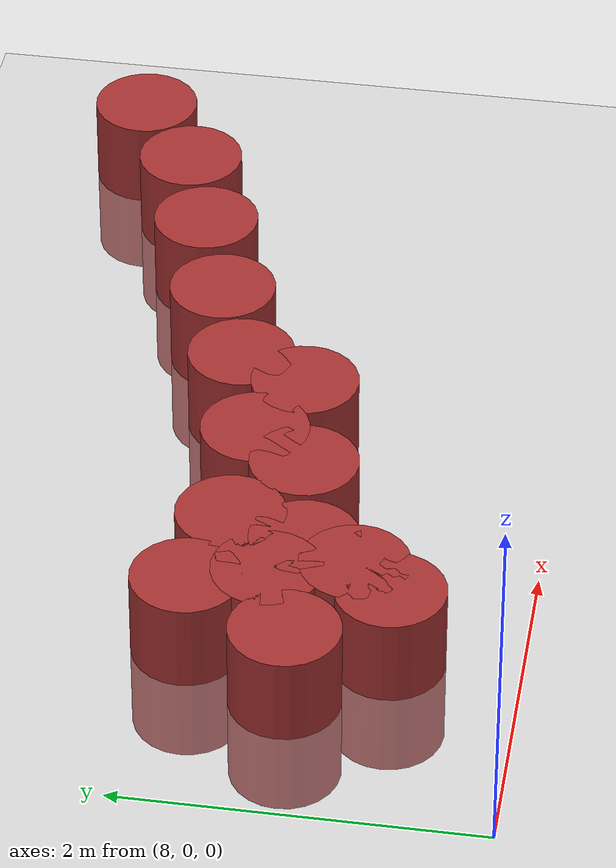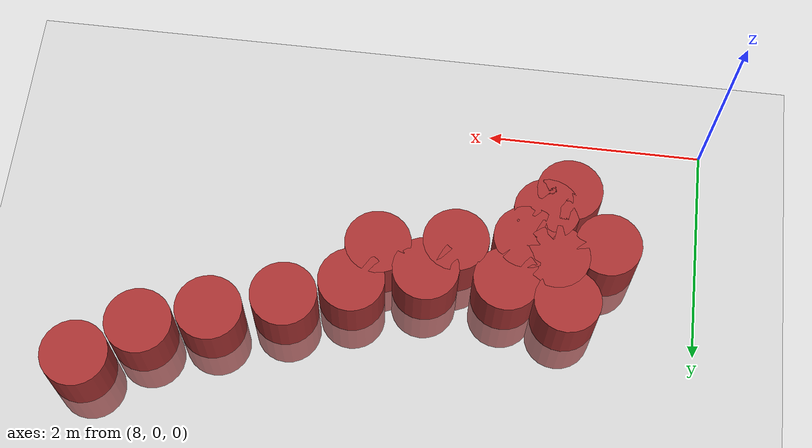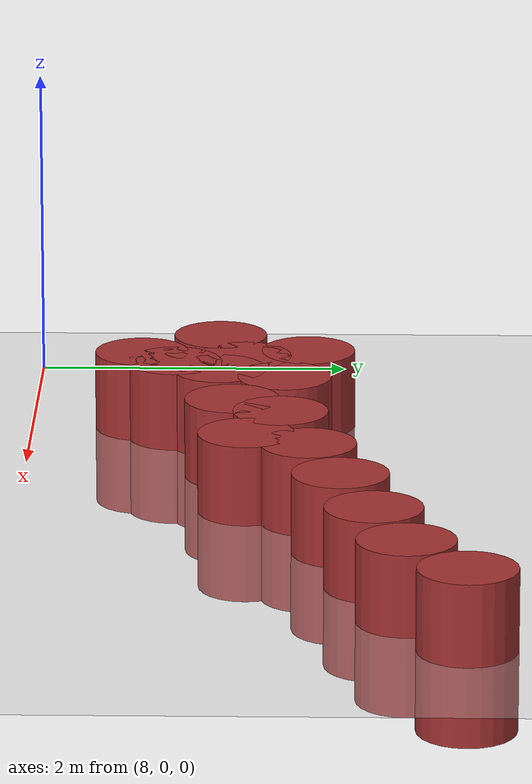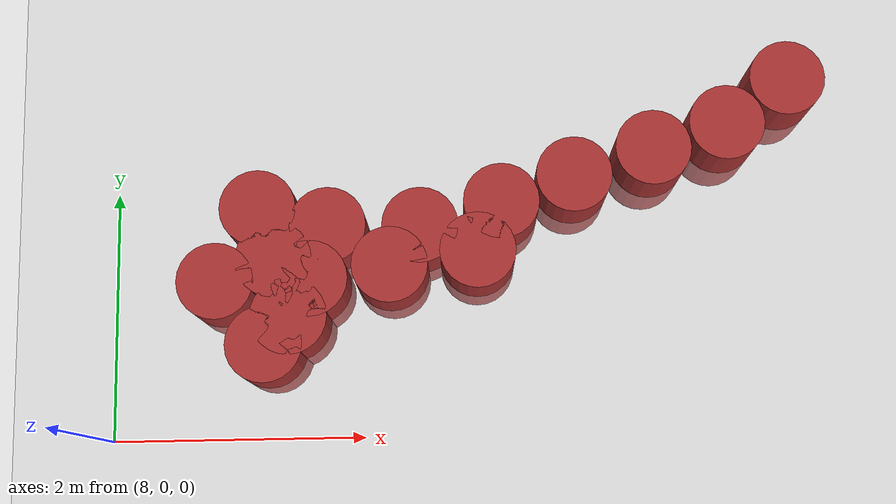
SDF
<sdf version="1.6">
 <world name="default">
  <model name="ground_plane">
   <static>1</static>
   <link name="link">
    <collision name="collision">
     <geometry><plane><normal>0 0 1</normal><size>100 100</size></plane></geometry>
     <surface><friction><ode><mu>100</mu><mu2>50</mu2></ode></friction></surface>
    </collision>
    <visual name="visual">
     <cast_shadows>0</cast_shadows>
     <geometry><plane><normal>0 0 1</normal><size>100 100</size></plane></geometry>
     <material>
      <script><uri>file://media/materials/scripts/gazebo.material</uri><name>Gazebo/Grey</name></script>
     </material>
    </visual>
   </link>
  </model>
  <model name="unit_cylinder_14">
   <static>1</static>
   <pose>10.9078 1.41419 0 0 -0 0</pose>
   <link name="link">
    <inertial>
     <mass>1</mass>
     <inertia><ixx>0.145833</ixx><ixy>0</ixy><ixz>0</ixz><iyy>0.145833</iyy><iyz>0</iyz><izz>0.125</izz></inertia>
    </inertial>
    <collision name="collision">
     <geometry><cylinder><radius>0.3</radius><length>1</length></cylinder></geometry>
    </collision>
    <visual name="visual">
     <geometry><cylinder><radius>0.3</radius><length>1</length></cylinder></geometry>
     <material><ambient>0.648 0.192 0.192 1</ambient><diffuse>0.648 0.192 0.192 1</diffuse></material>
     <material>
      <script><name>Gazebo/Grey</name><uri>file://media/materials/scripts/gazebo.material</uri></script>
     </material>
    </visual>
   </link>
  </model>
  <model name="unit_cylinder_17">
   <static>1</static>
   <pose>10.2158 1.31151 0 0 -0 0</pose>
   <link name="link">
    <inertial>
     <mass>1</mass>
     <inertia><ixx>0.145833</ixx><ixy>0</ixy><ixz>0</ixz><iyy>0.145833</iyy><iyz>0</iyz><izz>0.125</izz></inertia>
    </inertial>
    <collision name="collision">
     <geometry><cylinder><radius>0.3</radius><length>1</length></cylinder></geometry>
    </collision>
    <visual name="visual">
     <geometry><cylinder><radius>0.3</radius><length>1</length></cylinder></geometry>
     <material><ambient>0.648 0.192 0.192 1</ambient><diffuse>0.648 0.192 0.192 1</diffuse></material>
     <material>
      <script><name>Gazebo/Grey</name><uri>file://media/materials/scripts/gazebo.material</uri></script>
     </material>
    </visual>
   </link>
  </model>
  <model name="unit_cylinder_24">
   <static>1</static>
   <pose>10.4578 1.61905 0 0 -0 0</pose>
   <link name="link">
    <inertial>
     <mass>1</mass>
     <inertia><ixx>0.145833</ixx><ixy>0</ixy><ixz>0</ixz><iyy>0.145833</iyy><iyz>0</iyz><izz>0.125</izz></inertia>
    </inertial>
    <collision name="collision">
     <geometry><cylinder><radius>0.3</radius><length>1</length></cylinder></geometry>
    </collision>
    <visual name="visual">
     <geometry><cylinder><radius>0.3</radius><length>1</length></cylinder></geometry>
     <material><ambient>0.648 0.192 0.192 1</ambient><diffuse>0.648 0.192 0.192 1</diffuse></material>
     <material>
      <script><name>Gazebo/Grey</name><uri>file://media/materials/scripts/gazebo.material</uri></script>
     </material>
    </visual>
   </link>
  </model>
  <model name="unit_cylinder_25">
   <static>1</static>
   <pose>12.3104 2.2071 0 0 -0 0</pose>
   <link name="link">
    <inertial>
     <mass>1</mass>
     <inertia><ixx>0.145833</ixx><ixy>0</ixy><ixz>0</ixz><iyy>0.145833</iyy><iyz>0</iyz><izz>0.125</izz></inertia>
    </inertial>
    <collision name="collision">
     <geometry><cylinder><radius>0.3</radius><length>1</length></cylinder></geometry>
    </collision>
    <visual name="visual">
     <geometry><cylinder><radius>0.3</radius><length>1</length></cylinder></geometry>
     <material><ambient>0.648 0.192 0.192 1</ambient><diffuse>0.648 0.192 0.192 1</diffuse></material>
     <material>
      <script><name>Gazebo/Grey</name><uri>file://media/materials/scripts/gazebo.material</uri></script>
     </material>
    </visual>
   </link>
  </model>
  <model name="unit_cylinder_32">
   <static>1</static>
   <pose>9.73455 1.63137 0 0 -0 0</pose>
   <link name="link">
    <inertial>
     <mass>1</mass>
     <inertia><ixx>0.145833</ixx><ixy>0</ixy><ixz>0</ixz><iyy>0.145833</iyy><iyz>0</iyz><izz>0.125</izz></inertia>
    </inertial>
    <collision name="collision">
     <geometry><cylinder><radius>0.3</radius><length>1</length></cylinder></geometry>
    </collision>
    <visual name="visual">
     <geometry><cylinder><radius>0.3</radius><length>1</length></cylinder></geometry>
     <material><ambient>0.648 0.192 0.192 1</ambient><diffuse>0.648 0.192 0.192 1</diffuse></material>
     <material>
      <script><name>Gazebo/Grey</name><uri>file://media/materials/scripts/gazebo.material</uri></script>
     </material>
    </visual>
   </link>
  </model>
  <model name="unit_cylinder_35">
   <static>1</static>
   <pose>9.18583 1.77587 0 0 -0 0</pose>
   <link name="link">
    <inertial>
     <mass>1</mass>
     <inertia><ixx>0.145833</ixx><ixy>0</ixy><ixz>0</ixz><iyy>0.145833</iyy><iyz>0</iyz><izz>0.125</izz></inertia>
    </inertial>
    <collision name="collision">
     <geometry><cylinder><radius>0.3</radius><length>1</length></cylinder></geometry>
    </collision>
    <visual name="visual">
     <geometry><cylinder><radius>0.3</radius><length>1</length></cylinder></geometry>
     <material><ambient>0.648 0.192 0.192 1</ambient><diffuse>0.648 0.192 0.192 1</diffuse></material>
     <material>
      <script><name>Gazebo/Grey</name><uri>file://media/materials/scripts/gazebo.material</uri></script>
     </material>
    </visual>
   </link>
  </model>
  <model name="unit_cylinder_41">
   <static>1</static>
   <pose>9.42873 0.920726 0 0 -0 0</pose>
   <link name="link">
    <inertial>
     <mass>1</mass>
     <inertia><ixx>0.145833</ixx><ixy>0</ixy><ixz>0</ixz><iyy>0.145833</iyy><iyz>0</iyz><izz>0.125</izz></inertia>
    </inertial>
    <collision name="collision">
     <geometry><cylinder><radius>0.3</radius><length>1</length></cylinder></geometry>
    </collision>
    <visual name="visual">
     <geometry><cylinder><radius>0.3</radius><length>1</length></cylinder></geometry>
     <material><ambient>0.648 0.192 0.192 1</ambient><diffuse>0.648 0.192 0.192 1</diffuse></material>
     <material>
      <script><name>Gazebo/Grey</name><uri>file://media/materials/scripts/gazebo.material</uri></script>
     </material>
    </visual>
   </link>
  </model>
  <model name="unit_cylinder_42">
   <static>1</static>
   <pose>9.23696 0.705928 0 0 -0 0</pose>
   <link name="link">
    <inertial>
     <mass>1</mass>
     <inertia><ixx>0.145833</ixx><ixy>0</ixy><ixz>0</ixz><iyy>0.145833</iyy><iyz>0</iyz><izz>0.125</izz></inertia>
    </inertial>
    <collision name="collision">
     <geometry><cylinder><radius>0.3</radius><length>1</length></cylinder></geometry>
    </collision>
    <visual name="visual">
     <geometry><cylinder><radius>0.3</radius><length>1</length></cylinder></geometry>
     <material><ambient>0.648 0.192 0.192 1</ambient><diffuse>0.648 0.192 0.192 1</diffuse></material>
     <material>
      <script><name>Gazebo/Grey</name><uri>file://media/materials/scripts/gazebo.material</uri></script>
     </material>
    </visual>
   </link>
  </model>
  <model name="unit_cylinder_45">
   <static>1</static>
   <pose>9.58952 1.21252 0 0 -0 0</pose>
   <link name="link">
    <inertial>
     <mass>1</mass>
     <inertia><ixx>0.145833</ixx><ixy>0</ixy><ixz>0</ixz><iyy>0.145833</iyy><iyz>0</iyz><izz>0.125</izz></inertia>
    </inertial>
    <collision name="collision">
     <geometry><cylinder><radius>0.3</radius><length>1</length></cylinder></geometry>
    </collision>
    <visual name="visual">
     <geometry><cylinder><radius>0.3</radius><length>1</length></cylinder></geometry>
     <material><ambient>0.648 0.192 0.192 1</ambient><diffuse>0.648 0.192 0.192 1</diffuse></material>
     <material>
      <script><name>Gazebo/Grey</name><uri>file://media/materials/scripts/gazebo.material</uri></script>
     </material>
    </visual>
   </link>
  </model>
  <model name="unit_cylinder_46">
   <static>1</static>
   <pose>9.31119 1.36847 0 0 -0 0</pose>
   <link name="link">
    <inertial>
     <mass>1</mass>
     <inertia><ixx>0.145833</ixx><ixy>0</ixy><ixz>0</ixz><iyy>0.145833</iyy><iyz>0</iyz><izz>0.125</izz></inertia>
    </inertial>
    <collision name="collision">
     <geometry><cylinder><radius>0.3</radius><length>1</length></cylinder></geometry>
    </collision>
    <visual name="visual">
     <geometry><cylinder><radius>0.3</radius><length>1</length></cylinder></geometry>
     <material><ambient>0.648 0.192 0.192 1</ambient><diffuse>0.648 0.192 0.192 1</diffuse></material>
     <material>
      <script><name>Gazebo/Grey</name><uri>file://media/materials/scripts/gazebo.material</uri></script>
     </material>
    </visual>
   </link>
  </model>
  <model name="unit_cylinder_120">
   <static>1</static>
   <pose>11.1 1.8 0 0 -0 0</pose>
   <link name="link">
    <inertial>
     <mass>1</mass>
     <inertia><ixx>0.145833</ixx><ixy>0</ixy><ixz>0</ixz><iyy>0.145833</iyy><iyz>0</iyz><izz>0.125</izz></inertia>
    </inertial>
    <collision name="collision">
     <geometry><cylinder><radius>0.3</radius><length>1</length></cylinder></geometry>
    </collision>
    <visual name="visual">
     <geometry><cylinder><radius>0.3</radius><length>1</length></cylinder></geometry>
     <material><ambient>0.648 0.192 0.192 1</ambient><diffuse>0.648 0.192 0.192 1</diffuse></material>
     <material>
      <script><name>Gazebo/Grey</name><uri>file://media/materials/scripts/gazebo.material</uri></script>
     </material>
    </visual>
   </link>
  </model>
  <model name="unit_cylinder_121">
   <static>1</static>
   <pose>11.6782 2.00305 0 0 -0 0</pose>
   <link name="link">
    <inertial>
     <mass>1</mass>
     <inertia><ixx>0.145833</ixx><ixy>0</ixy><ixz>0</ixz><iyy>0.145833</iyy><iyz>0</iyz><izz>0.125</izz></inertia>
    </inertial>
    <collision name="collision">
     <geometry><cylinder><radius>0.3</radius><length>1</length></cylinder></geometry>
    </collision>
    <visual name="visual">
     <geometry><cylinder><radius>0.3</radius><length>1</length></cylinder></geometry>
     <material><ambient>0.648 0.192 0.192 1</ambient><diffuse>0.648 0.192 0.192 1</diffuse></material>
     <material>
      <script><name>Gazebo/Grey</name><uri>file://media/materials/scripts/gazebo.material</uri></script>
     </material>
    </visual>
   </link>
  </model>
  <model name="unit_cylinder_127">
   <static>1</static>
   <pose>12.9 2.4 0 0 -0 0</pose>
   <link name="link">
    <inertial>
     <mass>1</mass>
     <inertia><ixx>0.145833</ixx><ixy>0</ixy><ixz>0</ixz><iyy>0.145833</iyy><iyz>0</iyz><izz>0.125</izz></inertia>
    </inertial>
    <collision name="collision">
     <geometry><cylinder><radius>0.3</radius><length>1</length></cylinder></geometry>
    </collision>
    <visual name="visual">
     <geometry><cylinder><radius>0.3</radius><length>1</length></cylinder></geometry>
     <material><ambient>0.648 0.192 0.192 1</ambient><diffuse>0.648 0.192 0.192 1</diffuse></material>
     <material>
      <script><name>Gazebo/Grey</name><uri>file://media/materials/scripts/gazebo.material</uri></script>
     </material>
    </visual>
   </link>
  </model>
  <model name="unit_cylinder_149">
   <static>1</static>
   <pose>13.395 2.75399 0 0 -0 0</pose>
   <link name="link">
    <inertial>
     <mass>1</mass>
     <inertia><ixx>0.145833</ixx><ixy>0</ixy><ixz>0</ixz><iyy>0.145833</iyy><iyz>0</iyz><izz>0.125</izz></inertia>
    </inertial>
    <collision name="collision">
     <geometry><cylinder><radius>0.3</radius><length>1</length></cylinder></geometry>
    </collision>
    <visual name="visual">
     <geometry><cylinder><radius>0.3</radius><length>1</length></cylinder></geometry>
     <material><ambient>0.648 0.192 0.192 1</ambient><diffuse>0.648 0.192 0.192 1</diffuse></material>
     <material>
      <script><name>Gazebo/Grey</name><uri>file://media/materials/scripts/gazebo.material</uri></script>
     </material>
    </visual>
   </link>
  </model>
  <model name="unit_cylinder_350">
   <static>1</static>
   <pose>8.85704 1.20294 0 0 -0 0</pose>
   <link name="link">
    <inertial>
     <mass>1</mass>
     <inertia><ixx>0.145833</ixx><ixy>0</ixy><ixz>0</ixz><iyy>0.145833</iyy><iyz>0</iyz><izz>0.125</izz></inertia>
    </inertial>
    <collision name="collision">
     <geometry><cylinder><radius>0.3</radius><length>1</length></cylinder></geometry>
    </collision>
    <visual name="visual">
     <geometry><cylinder><radius>0.3</radius><length>1</length></cylinder></geometry>
     <material><ambient>0.648 0.192 0.192 1</ambient><diffuse>0.648 0.192 0.192 1</diffuse></material>
     <material>
      <script><name>Gazebo/Grey</name><uri>file://media/materials/scripts/gazebo.material</uri></script>
     </material>
    </visual>
   </link>
  </model>
 </world>
</sdf>
